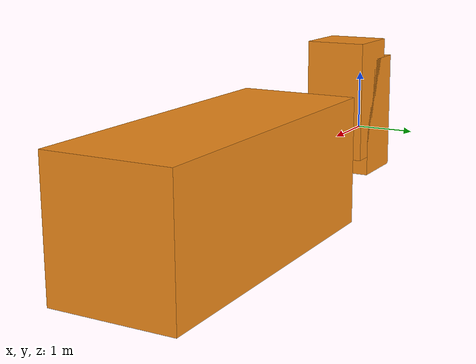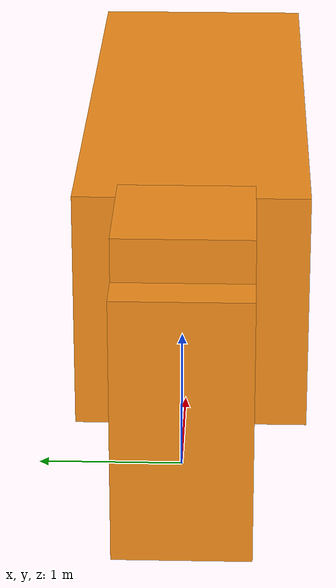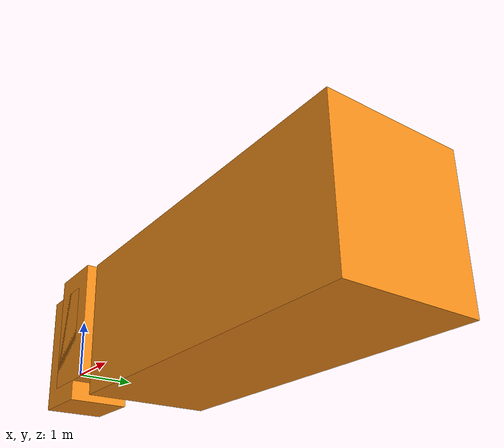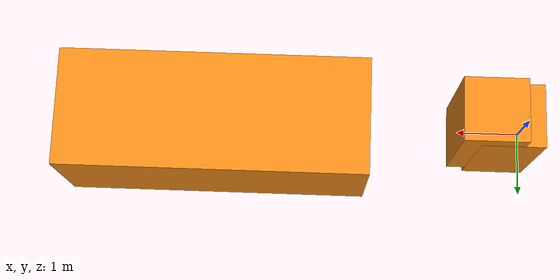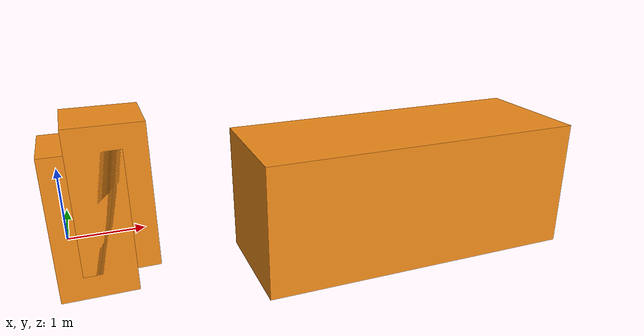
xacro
<?xml version="1.0"?>
<robot name="rrbot" xmlns:xacro="http://www.ros.org/wiki/xacro">

    <xacro:property name="height" value="2" />

    <link name="world"/>

    <joint name="grounding" type="fixed">
        <parent link="world"/>
        <child link="link1"/>
        <origin
                xyz="0 0 0"
                rpy="0 0 0"/>
    </joint>

    <link name="link1">
        <collision>
            <origin xyz="0 0 0" rpy="0 0 0"/>
            <geometry>
                <box size="5 0.5 ${height}"/>
            </geometry>
        </collision>

        <visual>
            <origin xyz="5 0 0" rpy="0 0 0"/>
            <geometry>
                <box size="5 1.9 ${height}"/>
            </geometry>
            <material name="orange"/>
        </visual>

        <inertial>
            <origin xyz="0 0 0" rpy="0 0 0"/>
            <mass value="1"/>
            <inertia
                    ixx="1.0" ixy="0.0" ixz="0.0"
                    iyy="1.0" iyz="0.0"
                    izz="1.0"/>
        </inertial>
    </link>

    <link name="link2">
        <collision>
            <origin xyz="0 0 0" rpy="0 0 0"/>
            <geometry>
                <box size="1 1 ${height}"/>
            </geometry>
        </collision>

        <visual>
            <origin xyz="0 0 0" rpy="0 0 0"/>
            <geometry>
                <box size="1 1 ${height}"/>
            </geometry>
            <material name="orange"/>
        </visual>

        <inertial>
            <origin xyz="0 0 0" rpy="0 0 0"/>
            <mass value="1"/>
            <inertia
                    ixx="1.0" ixy="0.0" ixz="0.0"
                    iyy="1.0" iyz="0.0"
                    izz="1.0"/>
        </inertial>
    </link>
    <link name="link3">
        <collision>
            <origin xyz="0 0 0" rpy="0 0 0"/>
            <geometry>
                <box size="1 1 ${height}"/>
            </geometry>
        </collision>

        <visual>
            <origin xyz="0 0 0" rpy="0 0 0"/>
            <geometry>
                <box size="1 1 ${height}"/>
            </geometry>
            <material name="orange"/>
        </visual>

        <inertial>
            <origin xyz="0 0 0" rpy="0 0 0"/>
            <mass value="1"/>
            <inertia
                    ixx="1.0" ixy="0.0" ixz="0.0"
                    iyy="1.0" iyz="0.0"
                    izz="1.0"/>
        </inertial>
    </link>

    <joint name="joint1" type="revolute">
            <origin xyz="0.312 0 0.324" rpy="0 0 0"/>
            <parent link="link1"/>
            <child link="link2"/>
            <limit
                    lower="-1.0472"
                    upper="1.32645"
                    effort="1000"
                    velocity="2.00713"/>
<!--            &lt;!&ndash;  limit effort, boudns? range=136 ? ? and dynamics? &ndash;&gt;-->
        </joint>

    <joint name="joint2" type="revolute">
            <origin xyz="0.312 0 0.324" rpy="0 0 0"/>
            <parent link="link2"/>
            <child link="link3"/>
            <axis xyz="0 1 0"/>
            <limit
                    lower="-1.0472"
                    upper="1.32645"
                    effort="1000"
                    velocity="2.00713"/>
            <!--  limit effort, boudns? range=136 ? ? and dynamics? -->
            <dynamics damping="72" friction="50"/>
        </joint>

 <xacro:macro name="joint_transmission_macro" params="joint_name">
            <transmission name="${joint_name}_transmssion">
                <type>transmission_interface/SimpleTransmission</type>
                <joint name="${joint_name}">
                    <hardwareInterface>hardware_interface/EffortJointInterface</hardwareInterface>
                </joint>
                <actuator name="${joint_name}_motor">
                    <hardwareInterface>EffortJointInterface</hardwareInterface>
                    <mechanicalReduction>1</mechanicalReduction>
                </actuator>
            </transmission>
            <gazebo reference="${joint_name}">
                <implicitSpringDamper>1</implicitSpringDamper>
            </gazebo>
        </xacro:macro>

        <joint_transmission_macro joint_name="joint1"/>
        <joint_transmission_macro joint_name="joint2"/>

    <gazebo>
        <plugin filename="libgazebo_ros_control.so" name="ros_control">
            <robotNamespace>/rrbot</robotNamespace>
        </plugin>
    </gazebo>
</robot>
